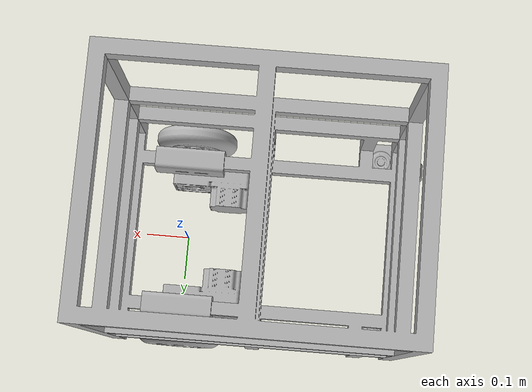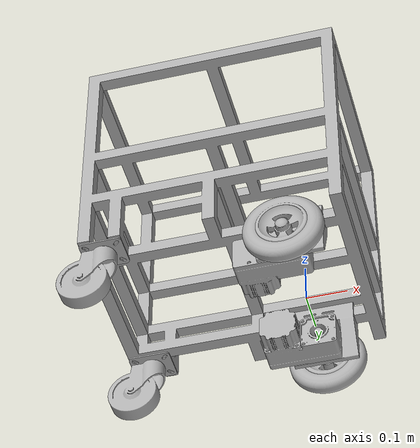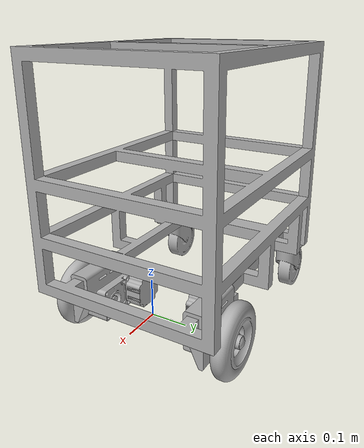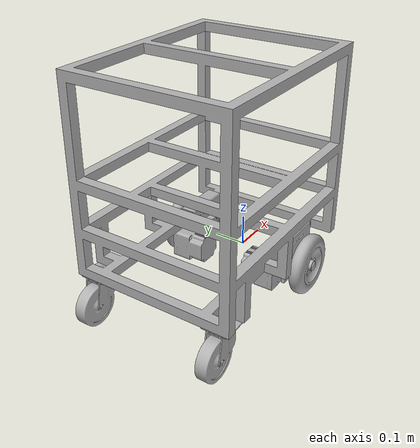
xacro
<?xml version="1.0" ?>
<robot name="amr_re" xmlns:xacro="http://www.ros.org/wiki/xacro">

  <xacro:arg name="prefix" default=""/>
  <xacro:property name="prefix" value="$(arg prefix)"/>

  <xacro:include filename="$(find amr_re_description)/urdf/materials.xacro" />
  <xacro:include filename="$(find amr_re_description)/urdf/amr_re.trans" />
  <xacro:include filename="$(find amr_re_description)/urdf/amr_re.gazebo" />

  <link name="${prefix}base_link">
    <inertial>
      <origin xyz="-0.180952635719906 3.0531162293977174e-16 0.3344758064516138" rpy="0 0 0"/>
      <mass value="89.79614999999988"/>
      <inertia ixx="7.400603" iyy="8.91775" izz="8.515942" ixy="-0.0" iyz="0.0" ixz="-0.118779"/>
    </inertial>
    <visual>
      <origin xyz="0 0 0" rpy="0 0 0"/>
      <geometry>
        <mesh filename="package://amr_re_description/meshes/base_link.stl" scale="0.001 0.001 0.001"/>
      </geometry>
      <material name="silver"/>
    </visual>
    <collision>
      <origin xyz="0 0 0" rpy="0 0 0"/>
      <geometry>
        <mesh filename="package://amr_re_description/meshes/base_link.stl" scale="0.001 0.001 0.001"/>
      </geometry>
    </collision>
  </link>

  <link name="${prefix}brk_1_1">
    <inertial>
      <origin xyz="-0.10137604873242642 0.008696866548616428 -0.04583879811973288" rpy="0 0 0"/>
      <mass value="3.9239093994786898"/>
      <inertia ixx="0.007141" iyy="0.015707" izz="0.010756" ixy="-0.000145" iyz="-0.001013" ixz="0.000996"/>
    </inertial>
    <visual>
      <origin xyz="-0.1152 0.185 -0.09625" rpy="0 0 0"/>
      <geometry>
        <mesh filename="package://amr_re_description/meshes/brk_1_1.stl" scale="0.001 0.001 0.001"/>
      </geometry>
      <material name="silver"/>
    </visual>
    <collision>
      <origin xyz="-0.1152 0.185 -0.09625" rpy="0 0 0"/>
      <geometry>
        <mesh filename="package://amr_re_description/meshes/brk_1_1.stl" scale="0.001 0.001 0.001"/>
      </geometry>
    </collision>
  </link>

  <link name="${prefix}J1_1">
    <inertial>
      <origin xyz="-0.09512786372049682 -0.045419130179215145 -0.03673477444793122" rpy="0 0 0"/>
      <mass value="9.835943753349952"/>
      <inertia ixx="0.016014" iyy="0.030971" izz="0.034222" ixy="-0.005332" iyz="1e-06" ixz="9e-06"/>
    </inertial>
    <visual>
      <origin xyz="-0.03695 -0.185 -0.04277" rpy="0 0 0"/>
      <geometry>
        <mesh filename="package://amr_re_description/meshes/J1_1.stl" scale="0.001 0.001 0.001"/>
      </geometry>
      <material name="silver"/>
    </visual>
    <collision>
      <origin xyz="-0.03695 -0.185 -0.04277" rpy="0 0 0"/>
      <geometry>
        <mesh filename="package://amr_re_description/meshes/J1_1.stl" scale="0.001 0.001 0.001"/>
      </geometry>
    </collision>
  </link>

  <link name="${prefix}J2_1">
    <inertial>
      <origin xyz="-0.09512786372049742 0.04541913017921334 -0.036804330795470006" rpy="0 0 0"/>
      <mass value="9.835943753349952"/>
      <inertia ixx="0.016014" iyy="0.030971" izz="0.034222" ixy="0.005332" iyz="1e-06" ixz="-9e-06"/>
    </inertial>
    <visual>
      <origin xyz="-0.03695 0.185 -0.04277" rpy="0 0 0"/>
      <geometry>
        <mesh filename="package://amr_re_description/meshes/J2_1.stl" scale="0.001 0.001 0.001"/>
      </geometry>
      <material name="silver"/>
    </visual>
    <collision>
      <origin xyz="-0.03695 0.185 -0.04277" rpy="0 0 0"/>
      <geometry>
        <mesh filename="package://amr_re_description/meshes/J2_1.stl" scale="0.001 0.001 0.001"/>
      </geometry>
    </collision>
  </link>

  <link name="${prefix}wheel2_1">
    <inertial>
      <origin xyz="3.7821838974738263e-07 0.03135914039417864 -5.361727511913293e-06" rpy="0 0 0"/>
      <mass value="7.704146529141015"/>
      <inertia ixx="0.020899" iyy="0.039488" izz="0.020899" ixy="0.0" iyz="-1e-06" ixz="-0.0"/>
    </inertial>
    <visual>
      <origin xyz="-0.00018 -0.20305 -0.006" rpy="0 0 0"/>
      <geometry>
        <mesh filename="package://amr_re_description/meshes/wheel2_1.stl" scale="0.001 0.001 0.001"/>
      </geometry>
      <material name="silver"/>
    </visual>
    <collision>
      <origin xyz="-0.00018 -0.20305 -0.006" rpy="0 0 0"/>
      <geometry>
        <mesh filename="package://amr_re_description/meshes/wheel2_1.stl" scale="0.001 0.001 0.001"/>
      </geometry>
    </collision>
  </link>

  <link name="${prefix}wheel1_1">
    <inertial>
      <origin xyz="3.7821839041687747e-07 -0.03135914039417925 6.2564841108569275e-06" rpy="0 0 0"/>
      <mass value="7.704146529141015"/>
      <inertia ixx="0.020899" iyy="0.039488" izz="0.020899" ixy="-0.0" iyz="-1e-06" ixz="0.0"/>
    </inertial>
    <visual>
      <origin xyz="-0.00018 0.20305 -0.006" rpy="0 0 0"/>
      <geometry>
        <mesh filename="package://amr_re_description/meshes/wheel1_1.stl" scale="0.001 0.001 0.001"/>
      </geometry>
      <material name="silver"/>
    </visual>
    <collision>
      <origin xyz="-0.00018 0.20305 -0.006" rpy="0 0 0"/>
      <geometry>
        <mesh filename="package://amr_re_description/meshes/wheel1_1.stl" scale="0.001 0.001 0.001"/>
      </geometry>
    </collision>
  </link>

  <link name="${prefix}caster2_1">
    <inertial>
      <origin xyz="-0.06271987827952474 0.012999546769944387 -0.07846980667472041" rpy="0 0 0"/>
      <mass value="4.029477467498696"/>
      <inertia ixx="0.006976" iyy="0.0109" izz="0.005349" ixy="-0.0" iyz="-0.0" ixz="-0.001674"/>
    </inertial>
    <visual>
      <origin xyz="0.4198 0.22 -0.06625" rpy="0 0 0"/>
      <geometry>
        <mesh filename="package://amr_re_description/meshes/caster2_1.stl" scale="0.001 0.001 0.001"/>
      </geometry>
      <material name="silver"/>
    </visual>
    <collision>
      <origin xyz="0.4198 0.22 -0.06625" rpy="0 0 0"/>
      <geometry>
        <mesh filename="package://amr_re_description/meshes/caster2_1.stl" scale="0.001 0.001 0.001"/>
      </geometry>
    </collision>
  </link>

  <link name="${prefix}caster1_1">
    <inertial>
      <origin xyz="-0.06271987827952352 -0.013000453230055442 -0.07846980667472167" rpy="0 0 0"/>
      <mass value="4.029477467498695"/>
      <inertia ixx="0.006976" iyy="0.0109" izz="0.005349" ixy="-0.0" iyz="-0.0" ixz="-0.001674"/>
    </inertial>
    <visual>
      <origin xyz="0.4198 -0.22 -0.06625" rpy="0 0 0"/>
      <geometry>
        <mesh filename="package://amr_re_description/meshes/caster1_1.stl" scale="0.001 0.001 0.001"/>
      </geometry>
      <material name="silver"/>
    </visual>
    <collision>
      <origin xyz="0.4198 -0.22 -0.06625" rpy="0 0 0"/>
      <geometry>
        <mesh filename="package://amr_re_description/meshes/caster1_1.stl" scale="0.001 0.001 0.001"/>
      </geometry>
    </collision>
  </link>

  <link name="${prefix}brk_2_1">
    <inertial>
      <origin xyz="-0.10137604868812619 -0.008696866474629555 -0.04583879863387563" rpy="0 0 0"/>
      <mass value="3.923909351517027"/>
      <inertia ixx="0.007141" iyy="0.015707" izz="0.010756" ixy="0.000145" iyz="0.001013" ixz="0.000996"/>
    </inertial>
    <visual>
      <origin xyz="-0.1152 -0.185 -0.09625" rpy="0 0 0"/>
      <geometry>
        <mesh filename="package://amr_re_description/meshes/brk_2_1.stl" scale="0.001 0.001 0.001"/>
      </geometry>
      <material name="silver"/>
    </visual>
    <collision>
      <origin xyz="-0.1152 -0.185 -0.09625" rpy="0 0 0"/>
      <geometry>
        <mesh filename="package://amr_re_description/meshes/brk_2_1.stl" scale="0.001 0.001 0.001"/>
      </geometry>
    </collision>
  </link>

  <joint name="${prefix}Rigid_1" type="fixed">
    <origin xyz="0.1152 -0.185 0.09625" rpy="0 0 0"/>
    <parent link="${prefix}base_link"/>
    <child link="${prefix}brk_1_1"/>
  </joint>

  <joint name="${prefix}Rigid_4" type="fixed">
    <origin xyz="-0.07825 0.0 -0.05348" rpy="0 0 0"/>
    <parent link="${prefix}brk_2_1"/>
    <child link="${prefix}J1_1"/>
  </joint>

  <joint name="${prefix}Rigid_5" type="fixed">
    <origin xyz="-0.07825 0.0 -0.05348" rpy="0 0 0"/>
    <parent link="${prefix}brk_1_1"/>
    <child link="${prefix}J2_1"/>
  </joint>

  <joint name="${prefix}Revolute_6" type="continuous">
    <origin xyz="-0.03677 0.01805 -0.03677" rpy="0 0 0"/>
    <parent link="${prefix}J1_1"/>
    <child link="${prefix}wheel2_1"/>
    <axis xyz="0.0 -1.0 -0.0"/>
  </joint>

  <joint name="${prefix}Revolute_7" type="continuous">
    <origin xyz="-0.03677 -0.01805 -0.03677" rpy="0 0 0"/>
    <parent link="${prefix}J2_1"/>
    <child link="${prefix}wheel1_1"/>
    <axis xyz="-0.0 1.0 -0.0"/>
  </joint>

  <joint name="${prefix}Rigid_10" type="fixed">
    <origin xyz="-0.4198 -0.22 0.06625" rpy="0 0 0"/>
    <parent link="${prefix}base_link"/>
    <child link="${prefix}caster2_1"/>
  </joint>

  <joint name="${prefix}Rigid_11" type="fixed">
    <origin xyz="-0.4198 0.22 0.06625" rpy="0 0 0"/>
    <parent link="${prefix}base_link"/>
    <child link="${prefix}caster1_1"/>
  </joint>

  <joint name="${prefix}Rigid_12" type="fixed">
    <origin xyz="0.1152 0.185 0.09625" rpy="0 0 0"/>
    <parent link="${prefix}base_link"/>
    <child link="${prefix}brk_2_1"/>
  </joint>

</robot>

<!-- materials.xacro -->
<robot name="amr_re" xmlns:xacro="http://www.ros.org/wiki/xacro" >

<material name="silver">
  <color rgba="0.700 0.700 0.700 1.000"/>
</material>

</robot>

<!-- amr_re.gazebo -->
<robot name="amr_re" xmlns:xacro="http://www.ros.org/wiki/xacro">

  <xacro:arg name="prefix" default=""/>
  <xacro:property name="prefix" value="$(arg prefix)"/>

  <xacro:property name="body_color" value="Gazebo/Silver" />

  <gazebo>
    <plugin name="control" filename="libgazebo_ros_control.so"/>
  </gazebo>

  <gazebo reference="${prefix}base_link">
    <material>${body_color}</material>
    <mu1>0.2</mu1>
    <mu2>0.2</mu2>
    <selfCollide>true</selfCollide>
    <gravity>true</gravity>
  </gazebo>

  <gazebo reference="${prefix}brk_1_1">
    <material>${body_color}</material>
    <mu1>0.2</mu1>
    <mu2>0.2</mu2>
    <selfCollide>true</selfCollide>
  </gazebo>

  <gazebo reference="${prefix}J1_1">
    <material>${body_color}</material>
    <mu1>0.2</mu1>
    <mu2>0.2</mu2>
    <selfCollide>true</selfCollide>
  </gazebo>

  <gazebo reference="${prefix}J2_1">
    <material>${body_color}</material>
    <mu1>0.2</mu1>
    <mu2>0.2</mu2>
    <selfCollide>true</selfCollide>
  </gazebo>

  <gazebo reference="${prefix}wheel2_1">
    <material>${body_color}</material>
    <mu1>0.2</mu1>
    <mu2>0.2</mu2>
    <selfCollide>true</selfCollide>
  </gazebo>

  <gazebo reference="${prefix}wheel1_1">
    <material>${body_color}</material>
    <mu1>0.2</mu1>
    <mu2>0.2</mu2>
    <selfCollide>true</selfCollide>
  </gazebo>

  <gazebo reference="${prefix}caster2_1">
    <material>${body_color}</material>
    <mu1>0.2</mu1>
    <mu2>0.2</mu2>
    <selfCollide>true</selfCollide>
  </gazebo>

  <gazebo reference="${prefix}caster1_1">
    <material>${body_color}</material>
    <mu1>0.2</mu1>
    <mu2>0.2</mu2>
    <selfCollide>true</selfCollide>
  </gazebo>

  <gazebo reference="${prefix}brk_2_1">
    <material>${body_color}</material>
    <mu1>0.2</mu1>
    <mu2>0.2</mu2>
    <selfCollide>true</selfCollide>
  </gazebo>

</robot>
